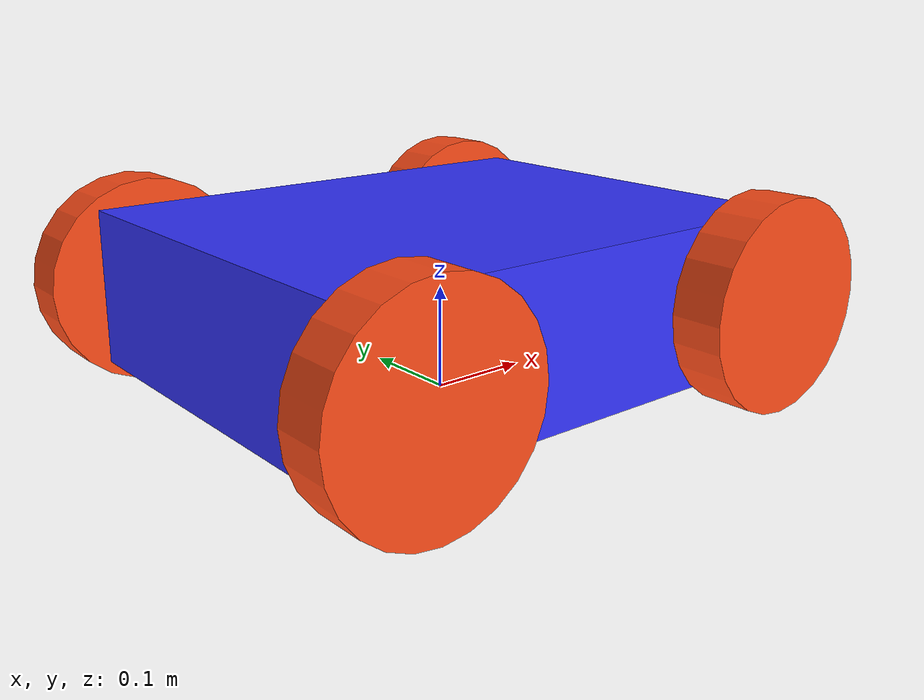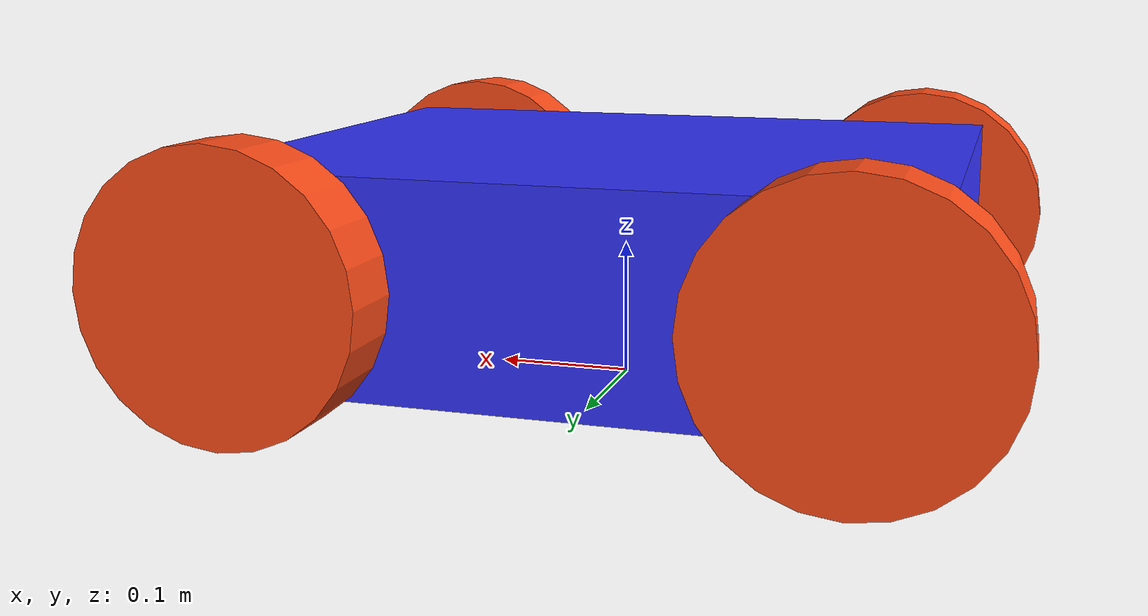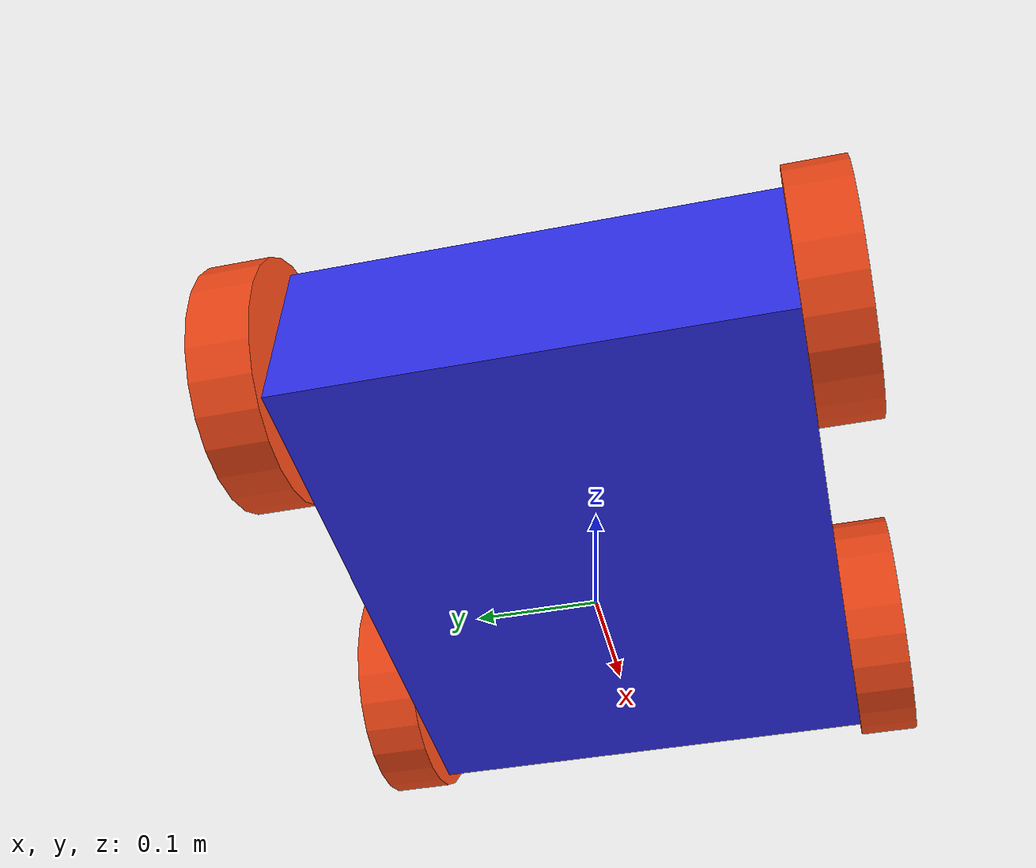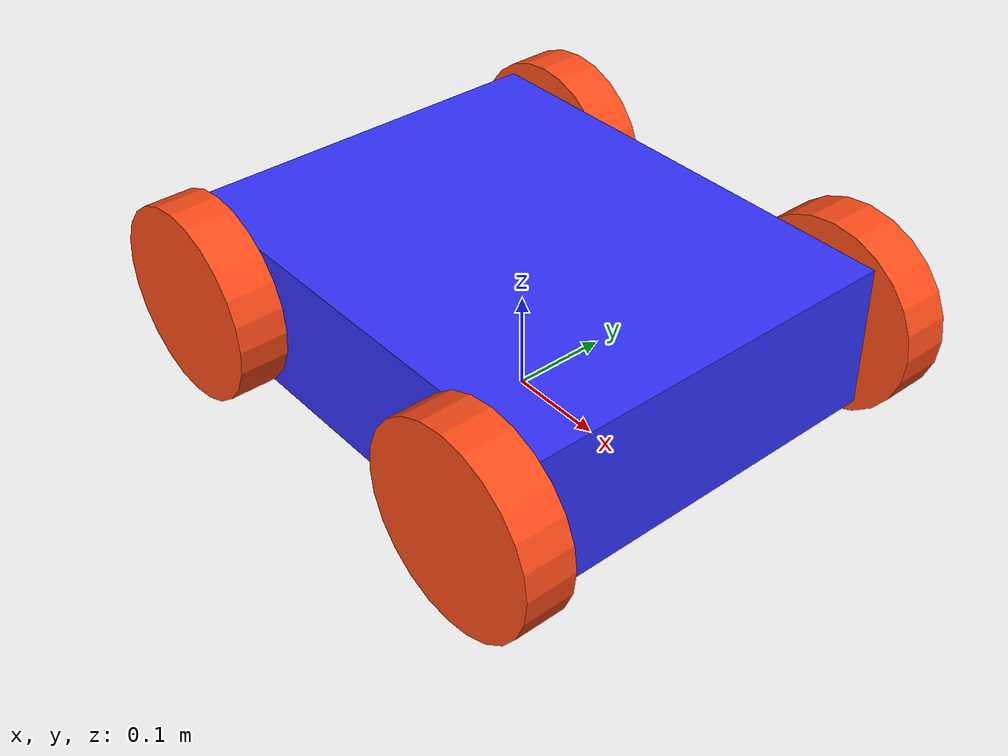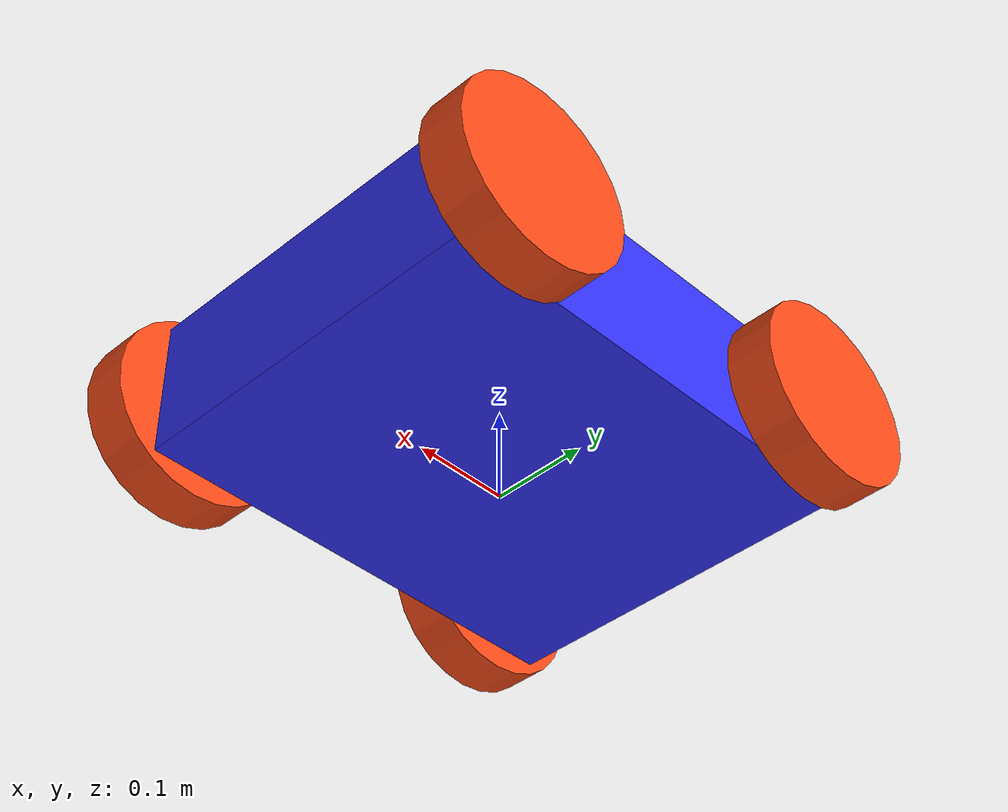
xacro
<?xml version="1.0"?>
<robot xmlns:xacro="http://www.ros.org/wiki/xacro">
    <xacro:include filename="inertial_macros.xacro"/>
    <xacro:include filename="materials.xacro"/>

    <!-- Parameters -->
    <xacro:property name="chassis_length" value="0.5"/>
    <xacro:property name="chassis_width" value="0.4"/>
    <xacro:property name="chassis_height" value="0.15"/>
    <xacro:property name="wheel_radius" value="0.1"/>
    <xacro:property name="wheel_width" value="0.05"/>

    <!-- Base Link -->
    <link name="base_link"/>

    <!-- Chassis -->
    <link name="chassis">
        <visual>
            <origin xyz="0 0 0.1"/>
            <geometry>
                <box size="${chassis_length} ${chassis_width} ${chassis_height}"/>
            </geometry>
            <material name="blue"/>
        </visual>
        <collision>
            <origin xyz="0 0 0.1"/>
            <geometry>
                <box size="${chassis_length} ${chassis_width} ${chassis_height}"/>
            </geometry>
        </collision>
        <xacro:inertial_box mass="10" x="${chassis_length}" y="${chassis_width}" z="${chassis_height}">
            <origin xyz="0 0 0.1" rpy="0 0 0"/>
        </xacro:inertial_box>
    </link>

    <joint name="chassis_joint" type="fixed">
        <parent link="base_link"/>
        <child link="chassis"/>
    </joint>

    <gazebo reference="chassis">
        <material>Gazebo/Blue</material>
    </gazebo>

    <!-- Steering Joints and Links -->
    <!-- Front Left Steering Joint -->
    <joint name="front_left_steering_joint" type="revolute">
        <parent link="base_link"/>
        <child link="front_left_steering_link"/>
        <origin xyz="0.2 ${chassis_width / 2 + wheel_width/2} ${wheel_radius}" rpy="0 0 0"/>
        <axis xyz="0 0 1"/>
        <limit lower="-0.785" upper="0.785" effort="1.0" velocity="1.0"/> <!-- -45 to 45 degrees -->
    </joint>

    <link name="front_left_steering_link">
        <visual>
            <geometry>
                <cylinder length="${wheel_width/2}" radius="${wheel_radius/4}"/>
            </geometry>
            <material name="white"/>
        </visual>
        <collision>
            <geometry>
                <box size="0.05 0.05 0.1"/>
            </geometry>
        </collision>
        <xacro:inertial_cylinder mass="0.1" length="${wheel_width/2}" radius="${wheel_radius/4}">
            <origin xyz="0 0 0" rpy="0 0 0"/> <!-- Center of mass -->
        </xacro:inertial_cylinder>
    </link>

     <gazebo reference="front_left_steering_link">
        <material>Gazebo/Black</material>
    </gazebo>

    <!-- Front Right Steering Joint -->
    <joint name="front_right_steering_joint" type="revolute">
        <parent link="base_link"/>
        <child link="front_right_steering_link"/>
        <origin xyz="0.2 -${chassis_width / 2 + wheel_width/2} ${wheel_radius}" rpy="0 0 0"/>
        <axis xyz="0 0 1"/>
        <limit lower="-0.785" upper="0.785" effort="1.0" velocity="1.0"/>
    </joint>

    <link name="front_right_steering_link">
        <visual>
            <geometry>
                <cylinder length="${wheel_width/2}" radius="${wheel_radius/4}"/>
            </geometry>
            <material name="white"/>
        </visual>
        <collision>
            <geometry>
                <box size="0.05 0.05 0.1"/>
            </geometry>
        </collision>
        <xacro:inertial_cylinder mass="0.1" length="${wheel_width/2}" radius="${wheel_radius/4}">
            <origin xyz="0 0 0" rpy="0 0 0"/>
        </xacro:inertial_cylinder>
    </link>

     <gazebo reference="front_right_steering_link">
        <material>Gazebo/Black</material>
    </gazebo>

    <!-- Rear Left Steering Joint (optional for 4-wheel steering) -->
    <joint name="rear_left_steering_joint" type="revolute">
        <parent link="base_link"/>
        <child link="rear_left_steering_link"/>
        <origin xyz="-0.2 ${chassis_width / 2 + wheel_width/2} ${wheel_radius}" rpy="0 0 0"/>
        <axis xyz="0 0 1"/>
        <limit lower="-0.785" upper="0.785" effort="1.0" velocity="1.0"/>
    </joint>

    <link name="rear_left_steering_link">
        <visual>
            <geometry>
                <cylinder length="${wheel_width/2}" radius="${wheel_radius/4}"/>
            </geometry>
            <material name="white"/>
        </visual>
        <collision>
            <geometry>
                <box size="0.05 0.05 0.1"/>
            </geometry>
        </collision>
        <xacro:inertial_cylinder mass="0.1" length="${wheel_width/2}" radius="${wheel_radius/4}">
            <origin xyz="0 0 0" rpy="0 0 0"/>
        </xacro:inertial_cylinder>
    </link>

     <gazebo reference="rear_left_steering_link">
        <material>Gazebo/Black</material>
    </gazebo>

    <!-- Rear Right Steering Joint -->
    <joint name="rear_right_steering_joint" type="revolute">
        <parent link="base_link"/>
        <child link="rear_right_steering_link"/>
        <origin xyz="-0.2 -${chassis_width / 2 + wheel_width/2} ${wheel_radius}" rpy="0 0 0"/>
        <axis xyz="0 0 1"/>
        <limit lower="-0.785" upper="0.785" effort="1.0" velocity="1.0"/>
    </joint>

    <link name="rear_right_steering_link">
        <visual>
            <geometry>
                <cylinder length="${wheel_width/2}" radius="${wheel_radius/4}"/>
            </geometry>
            <material name="white"/>
        </visual>
        <collision>
            <geometry>
                <box size="0.05 0.05 0.1"/>
            </geometry>
        </collision>
        <xacro:inertial_cylinder mass="0.1" length="${wheel_width/2}" radius="${wheel_radius/4}">
            <origin xyz="0 0 0" rpy="0 0 0"/>
        </xacro:inertial_cylinder>
    </link>

     <gazebo reference="rear_right_steering_link">
        <material>Gazebo/Black</material>
    </gazebo>

    <!-- Wheels (attached to steering links) -->
    <!-- Front Left Wheel -->
    <joint name="front_left_wheel_joint" type="continuous">
        <parent link="front_left_steering_link"/>
        <child link="front_left_wheel"/>
        <origin xyz="0 0 0" rpy="-${pi/2} 0 0"/>
        <axis xyz="0 0 1"/>
    </joint>
    <link name="front_left_wheel">
        <visual>
            <geometry>
                <cylinder length="${wheel_width}" radius="${wheel_radius}"/>
            </geometry>
            <material name="orange"/>
        </visual>
        <collision>
            <geometry>
                <cylinder length="${wheel_width}" radius="${wheel_radius}"/>
            </geometry>
        </collision>
        <xacro:inertial_cylinder mass="0.1" length="${wheel_width}" radius="${wheel_radius}">
            <origin xyz="0 0 0" rpy="0 0 0"/>
        </xacro:inertial_cylinder>
    </link>

     <gazebo reference="front_left_wheel">
        <material>Gazebo/Orange</material>
    </gazebo>

    <!-- Front Right Wheel -->
    <joint name="front_right_wheel_joint" type="continuous">
        <parent link="front_right_steering_link"/>
        <child link="front_right_wheel"/>
        <origin xyz="0 0 0" rpy="${pi/2} 0 0"/>
        <axis xyz="0 0 -1"/>
    </joint>
    <link name="front_right_wheel">
        <visual>
            <geometry>
                <cylinder length="${wheel_width}" radius="${wheel_radius}"/>
            </geometry>
            <material name="orange"/>
        </visual>
        <collision>
            <geometry>
                <cylinder length="${wheel_width}" radius="${wheel_radius}"/>
            </geometry>
        </collision>
        <xacro:inertial_cylinder mass="0.1" length="${wheel_width}" radius="${wheel_radius}">
            <origin xyz="0 0 0" rpy="0 0 0"/>
        </xacro:inertial_cylinder>
    </link>

     <gazebo reference="front_right_wheel">
        <material>Gazebo/Orange</material>
    </gazebo>

    <!-- Rear Left Wheel -->
    <joint name="rear_left_wheel_joint" type="continuous">
        <parent link="rear_left_steering_link"/>
        <child link="rear_left_wheel"/>
        <origin xyz="0 0 0" rpy="-${pi/2} 0 0"/>
        <axis xyz="0 0 1"/>
    </joint>
    <link name="rear_left_wheel">
        <visual>
            <geometry>
                <cylinder length="${wheel_width}" radius="${wheel_radius}"/>
            </geometry>
            <material name="orange"/>
        </visual>
        <collision>
            <geometry>
                <cylinder length="${wheel_width}" radius="${wheel_radius}"/>
            </geometry>
        </collision>
        <xacro:inertial_cylinder mass="0.1" length="${wheel_width}" radius="${wheel_radius}">
            <origin xyz="0 0 0" rpy="0 0 0"/>
        </xacro:inertial_cylinder>
    </link>

     <gazebo reference="rear_left_wheel">
        <material>Gazebo/Orange</material>
    </gazebo>

    <!-- Rear Right Wheel -->
    <joint name="rear_right_wheel_joint" type="continuous">
        <parent link="rear_right_steering_link"/>
        <child link="rear_right_wheel"/>
        <origin xyz="0 0 0" rpy="${pi/2} 0 0"/>
        <axis xyz="0 0 -1"/>
    </joint>
    <link name="rear_right_wheel">
        <visual>
            <geometry>
                <cylinder length="${wheel_width}" radius="${wheel_radius}"/>
            </geometry>
            <material name="orange"/>
        </visual>
        <collision>
            <geometry>
                <cylinder length="${wheel_width}" radius="${wheel_radius}"/>
            </geometry>
        </collision>
        <xacro:inertial_cylinder mass="0.1" length="${wheel_width}" radius="${wheel_radius}">
            <origin xyz="0 0 0" rpy="0 0 0"/>
        </xacro:inertial_cylinder>
    </link>

     <gazebo reference="rear_right_wheel">
        <material>Gazebo/Orange</material>
    </gazebo>
</robot>

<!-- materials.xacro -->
<robot xmlns:xacro="http://www.ros.org/wiki/xacro"  name="rover">
    <!--Colors-->
    <material name="white">
        <color rgba="1 1 1 1" />
    </material>

    <material name="orange">
        <color rgba="1 0.3 0.1 1"/>
    </material>

    <material name="blue">
        <color rgba="0.2 0.2 1 1"/>
    </material>

    <material name="black">
        <color rgba="0 0 0 1"/>
    </material>
</robot>
